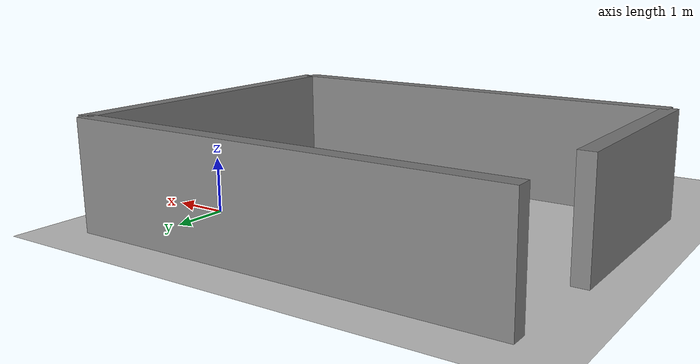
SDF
<sdf version="1.8">
 <world name="warehouse_world">
  <gravity>0 0 -9.8</gravity>
  <physics type="ode"><max_step_size>0.01</max_step_size><real_time_factor>1</real_time_factor></physics>
  <plugin name="gz::sim::systems::Physics" filename="gz-sim-physics-system"/>
  <plugin name="gz::sim::systems::UserCommands" filename="gz-sim-user-commands-system"/>
  <plugin name="gz::sim::systems::SceneBroadcaster" filename="gz-sim-scene-broadcaster-system"/>
  <plugin name="gz::sim::systems::Contact" filename="gz-sim-contact-system"/>
  <plugin name="gz::sim::systems::Imu" filename="gz-sim-imu-system"/>
  <plugin name="gz::sim::systems::Magnetometer" filename="gz-sim-magnetometer-system"/>
  <plugin name="gz::sim::systems::Altimeter" filename="gz-sim-altimeter-system"/>
  <plugin name="gz::sim::systems::NavSat" filename="gz-sim-navsat-system"/>
  <plugin name="gz::sim::systems::Sensors" filename="gz-sim-sensors-system">
   <render_engine>ogre2</render_engine>
  </plugin>
  <plugin filename="gz-sim-contact-system" name="gz::sim::systems::Contact"/>
  <include><uri>https://fuel.gazebosim.org/1.0/OpenRobotics/models/Sun</uri></include>
  <model name="ground_plane">
   <static>true</static>
   <link name="link">
    <collision name="collision">
     <geometry><plane><normal>0 0 1</normal><size>25 25</size></plane></geometry>
    </collision>
    <visual name="ground_vis">
     <geometry><plane><normal>0 0 1</normal><size>25 25</size></plane></geometry>
     <material><ambient>0.8 0.8 0.8 1</ambient><diffuse>0.8 0.8 0.8 1</diffuse></material>
    </visual>
   </link>
  </model>
  <model name="obstacle_cylinder">
   <static>true</static>
   <pose>-6 -6 0.6 0 0 0</pose>
   <link name="link">
    <collision name="collision">
     <geometry><cylinder><radius>0.4</radius><length>1.2</length></cylinder></geometry>
    </collision>
    <visual name="visual">
     <geometry><cylinder><radius>0.4</radius><length>1.2</length></cylinder></geometry>
     <material><ambient>0.1 0.1 0.1 1</ambient><diffuse>0.1 0.1 0.1 1</diffuse></material>
    </visual>
   </link>
  </model>
  <model name="wall_north">
   <static>true</static>
   <pose>-3 2.0 1 0 0 0</pose>
   <link name="link">
    <collision name="collision"><geometry><box><size>8 0.3 2</size></box></geometry></collision>
    <visual name="visual">
     <geometry><box><size>8 0.3 2</size></box></geometry>
     <material><ambient>0.5 0.5 0.5 1</ambient><diffuse>0.5 0.5 0.5 1</diffuse></material>
    </visual>
   </link>
  </model>
  <model name="wall_south">
   <static>true</static>
   <pose>-3 -4.0 1 0 0 0</pose>
   <link name="link">
    <collision name="collision"><geometry><box><size>8 0.3 2</size></box></geometry></collision>
    <visual name="visual">
     <geometry><box><size>8 0.3 2</size></box></geometry>
     <material><ambient>0.5 0.5 0.5 1</ambient><diffuse>0.5 0.5 0.5 1</diffuse></material>
    </visual>
   </link>
  </model>
  <model name="wall_east">
   <static>true</static>
   <pose>1.0 -1 1 0 0 1.5708</pose>
   <link name="link">
    <collision name="collision"><geometry><box><size>6 0.3 2</size></box></geometry></collision>
    <visual name="visual">
     <geometry><box><size>6 0.3 2</size></box></geometry>
     <material><ambient>0.5 0.5 0.5 1</ambient><diffuse>0.5 0.5 0.5 1</diffuse></material>
    </visual>
   </link>
  </model>
  <model name="wall_west">
   <static>true</static>
   <pose>-7.0 -2 1 0 0 1.5708</pose>
   <link name="link">
    <collision name="collision"><geometry><box><size>4 0.3 2</size></box></geometry></collision>
    <visual name="visual">
     <geometry><box><size>4 0.3 2</size></box></geometry>
     <material><ambient>0.5 0.5 0.5 1</ambient><diffuse>0.5 0.5 0.5 1</diffuse></material>
    </visual>
   </link>
  </model>
 </world>
</sdf>
